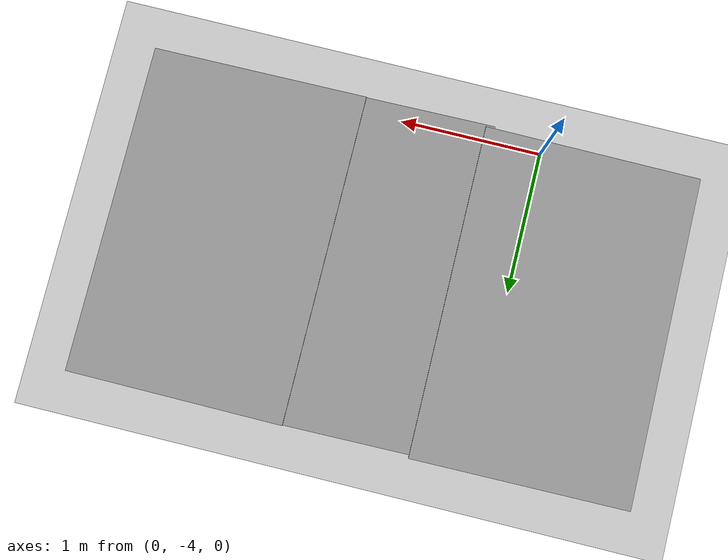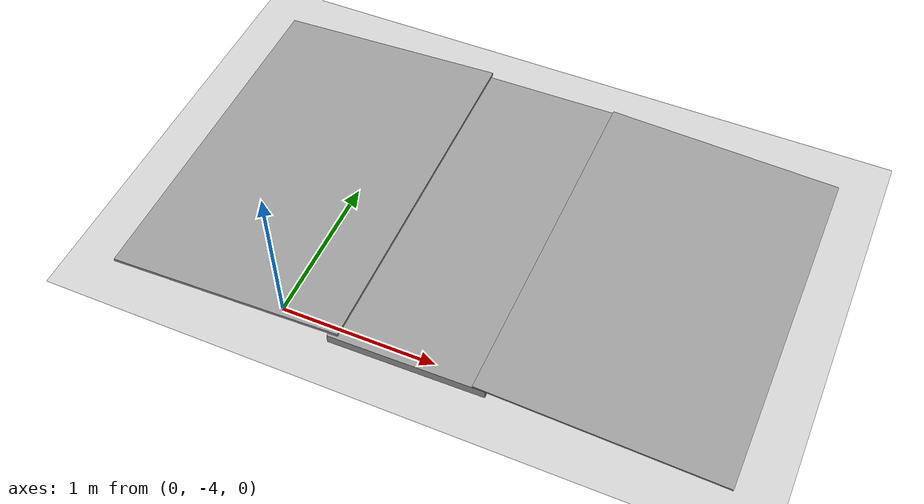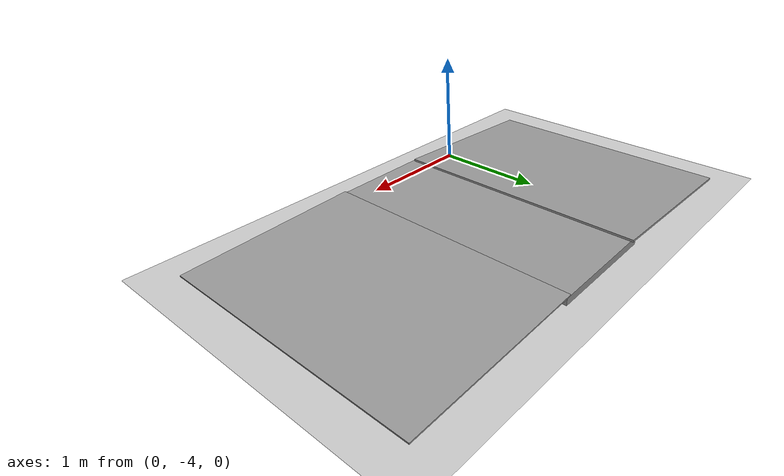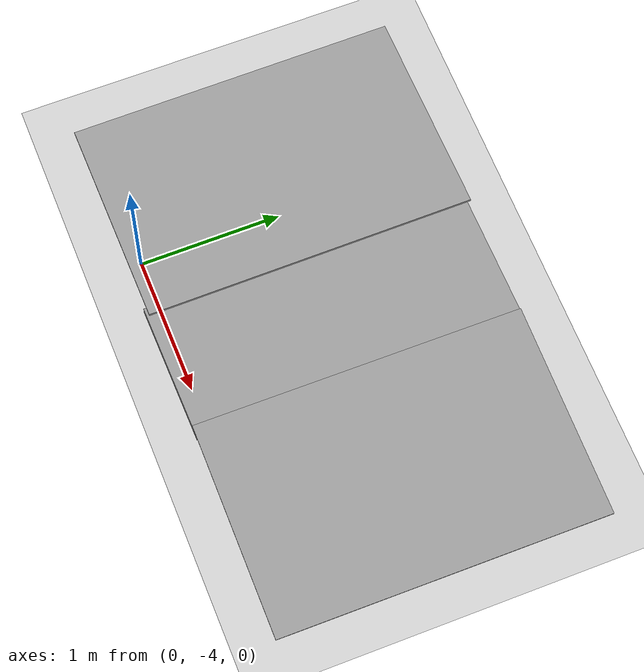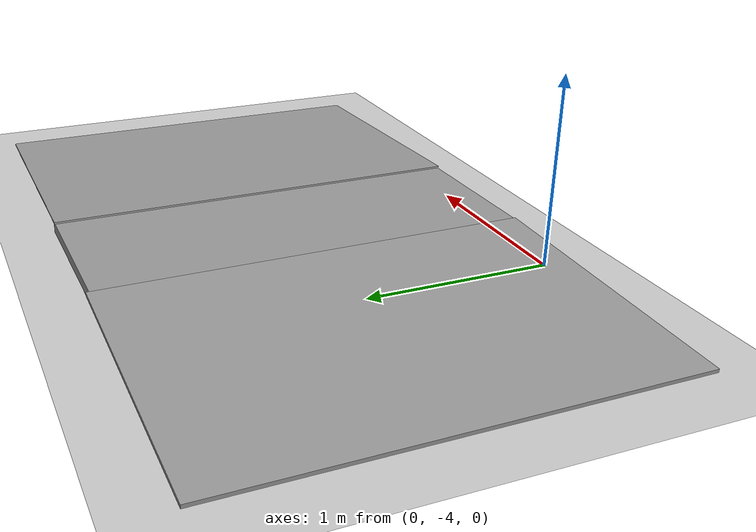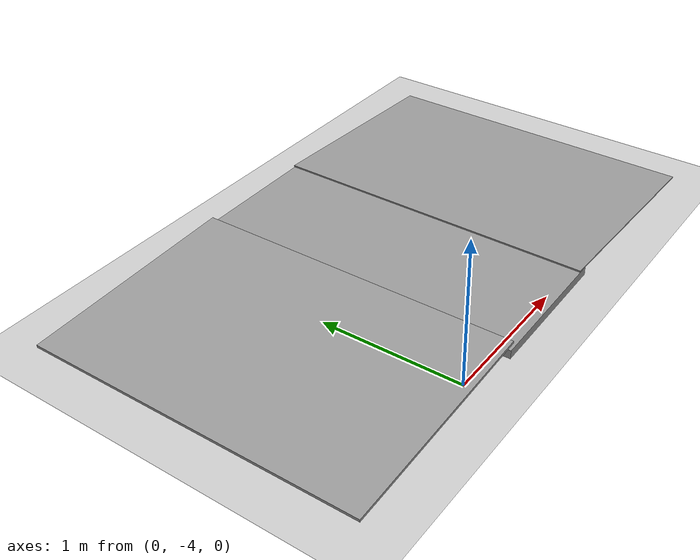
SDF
<sdf version="1.6">
 <world name="default">
  <light name="sun" type="directional">
   <pose>0 0 10 0 -0 0</pose>
   <diffuse>0.8 0.8 0.8 1</diffuse>
   <specular>0.1 0.1 0.1 1</specular>
   <attenuation>
    <range>1000</range>
    <constant>0.9</constant>
    <linear>0.01</linear>
    <quadratic>0.001</quadratic>
   </attenuation>
   <direction>-0.5 0.5 -1</direction>
  </light>
  <model name="ground_plane">
   <static>1</static>
   <link name="link">
    <collision name="collision">
     <geometry><plane><normal>0 0 1</normal><size>100 100</size></plane></geometry>
     <surface><friction><ode><mu>100</mu><mu2>50</mu2></ode></friction></surface>
    </collision>
    <visual name="visual">
     <cast_shadows>0</cast_shadows>
     <geometry><plane><normal>0 0 1</normal><size>100 100</size></plane></geometry>
     <material>
      <script><uri>file://media/materials/scripts/gazebo.material</uri><name>Gazebo/Grey</name></script>
     </material>
    </visual>
   </link>
  </model>
  <gravity>0 0 -9.8</gravity>
  <magnetic_field>6e-06 2.3e-05 -4.2e-05</magnetic_field>
  <atmosphere type="adiabatic"/>
  <physics name="default_physics" default="0" type="ode">
   <max_step_size>0.001</max_step_size>
   <real_time_factor>1</real_time_factor>
   <real_time_update_rate>1000</real_time_update_rate>
  </physics>
  <scene><ambient>0.4 0.4 0.4 1</ambient><background>0.7 0.7 0.7 1</background><shadows>1</shadows></scene>
  <spherical_coordinates>
   <surface_model>EARTH_WGS84</surface_model>
   <latitude_deg>0</latitude_deg>
   <longitude_deg>0</longitude_deg>
   <elevation>0</elevation>
   <heading_deg>0</heading_deg>
  </spherical_coordinates>
  <model name="unit_box_1_0_0_0">
   <link name="link">
    <inertial>
     <mass>5</mass>
     <inertia>
      <ixx>0.166667</ixx>
      <ixy>0</ixy>
      <ixz>0</ixz>
      <iyy>0.166667</iyy>
      <iyz>0</iyz>
      <izz>0.166667</izz>
     </inertia>
    </inertial>
    <visual name="visual">
     <geometry><box><size>1.54503 2.34178 0.010925</size></box></geometry>
     <material>
      <script><name>Gazebo/Grey</name><uri>file://media/materials/scripts/gazebo.material</uri></script>
      <ambient>0.3 0.3 0.3 1</ambient>
      <diffuse>0.7 0.7 0.7 1</diffuse>
      <specular>0.01 0.01 0.01 1</specular>
      <emissive>0 0 0 1</emissive>
      <shader type="vertex"><normal_map>__default__</normal_map></shader>
     </material>
    </visual>
    <collision name="collision">
     <geometry><box><size>1.54503 2.34178 0.010925</size></box></geometry>
     <surface>
      <friction>
       <ode><mu>1</mu><mu2>1</mu2><fdir1>0 0 0</fdir1><slip1>0</slip1><slip2>0</slip2></ode>
       <torsional>
        <coefficient>1</coefficient>
        <patch_radius>0</patch_radius>
        <surface_radius>0</surface_radius>
        <use_patch_radius>1</use_patch_radius>
        <ode><slip>0</slip></ode>
       </torsional>
      </friction>
      <bounce><restitution_coefficient>0</restitution_coefficient><threshold>1e+06</threshold></bounce>
      <contact>
       <collide_without_contact>0</collide_without_contact>
       <collide_without_contact_bitmask>1</collide_without_contact_bitmask>
       <collide_bitmask>1</collide_bitmask>
       <ode>
        <soft_cfm>0</soft_cfm>
        <soft_erp>0.2</soft_erp>
        <kp>1e+13</kp>
        <kd>1</kd>
        <max_vel>0.01</max_vel>
        <min_depth>0</min_depth>
       </ode>
       <bullet>
        <split_impulse>1</split_impulse>
        <split_impulse_penetration_threshold>-0.01</split_impulse_penetration_threshold>
        <soft_cfm>0</soft_cfm>
        <soft_erp>0.2</soft_erp>
        <kp>1e+13</kp>
        <kd>1</kd>
       </bullet>
      </contact>
     </surface>
    </collision>
   </link>
   <static>0</static>
   <pose>2.04901 -2.92475 0.037831 -3.14086 -0.04084 3.13862</pose>
  </model>
  <model name="unit_box_0_0_0">
   <link name="link">
    <inertial>
     <mass>10</mass>
     <inertia>
      <ixx>0.166667</ixx>
      <ixy>0</ixy>
      <ixz>0</ixz>
      <iyy>0.166667</iyy>
      <iyz>0</iyz>
      <izz>0.166667</izz>
     </inertia>
    </inertial>
    <visual name="visual">
     <geometry><box><size>1 2.33745 0.061306</size></box></geometry>
     <material>
      <script><name>Gazebo/Grey</name><uri>file://media/materials/scripts/gazebo.material</uri></script>
      <ambient>0.3 0.3 0.3 1</ambient>
      <diffuse>0.7 0.7 0.7 1</diffuse>
      <specular>0.01 0.01 0.01 1</specular>
      <emissive>0 0 0 1</emissive>
      <shader type="vertex"><normal_map>__default__</normal_map></shader>
     </material>
    </visual>
    <collision name="collision">
     <geometry><box><size>1 2.33745 0.061306</size></box></geometry>
     <surface>
      <friction>
       <ode><mu>1</mu><mu2>1</mu2><fdir1>0 0 0</fdir1><slip1>0</slip1><slip2>0</slip2></ode>
       <torsional>
        <coefficient>1</coefficient>
        <patch_radius>0</patch_radius>
        <surface_radius>0</surface_radius>
        <use_patch_radius>1</use_patch_radius>
        <ode><slip>0</slip></ode>
       </torsional>
      </friction>
      <bounce><restitution_coefficient>0</restitution_coefficient><threshold>1e+06</threshold></bounce>
      <contact>
       <collide_without_contact>0</collide_without_contact>
       <collide_without_contact_bitmask>1</collide_without_contact_bitmask>
       <collide_bitmask>1</collide_bitmask>
       <ode>
        <soft_cfm>0</soft_cfm>
        <soft_erp>0.2</soft_erp>
        <kp>1e+13</kp>
        <kd>1</kd>
        <max_vel>0.01</max_vel>
        <min_depth>0</min_depth>
       </ode>
       <bullet>
        <split_impulse>1</split_impulse>
        <split_impulse_penetration_threshold>-0.01</split_impulse_penetration_threshold>
        <soft_cfm>0</soft_cfm>
        <soft_erp>0.2</soft_erp>
        <kp>1e+13</kp>
        <kd>1</kd>
       </bullet>
      </contact>
     </surface>
    </collision>
   </link>
   <static>0</static>
   <pose>0.837123 -2.93018 0.03064 -1.2e-05 -2e-06 0.012917</pose>
  </model>
  <model name="unit_box_1_0_clone_0_0">
   <link name="link">
    <inertial>
     <mass>5</mass>
     <inertia>
      <ixx>0.166667</ixx>
      <ixy>0</ixy>
      <ixz>0</ixz>
      <iyy>0.166667</iyy>
      <iyz>0</iyz>
      <izz>0.166667</izz>
     </inertia>
    </inertial>
    <visual name="visual">
     <geometry><box><size>1.54503 2.34178 0.018698</size></box></geometry>
     <material>
      <script><name>Gazebo/Grey</name><uri>file://media/materials/scripts/gazebo.material</uri></script>
      <ambient>0.3 0.3 0.3 1</ambient>
      <diffuse>0.7 0.7 0.7 1</diffuse>
      <specular>0.01 0.01 0.01 1</specular>
      <emissive>0 0 0 1</emissive>
      <shader type="vertex"><normal_map>__default__</normal_map></shader>
     </material>
    </visual>
    <collision name="collision">
     <geometry><box><size>1.54503 2.34178 0.018698</size></box></geometry>
     <surface>
      <friction>
       <ode><mu>1</mu><mu2>1</mu2><fdir1>0 0 0</fdir1><slip1>0</slip1><slip2>0</slip2></ode>
       <torsional>
        <coefficient>1</coefficient>
        <patch_radius>0</patch_radius>
        <surface_radius>0</surface_radius>
        <use_patch_radius>1</use_patch_radius>
        <ode><slip>0</slip></ode>
       </torsional>
      </friction>
      <bounce><restitution_coefficient>0</restitution_coefficient><threshold>1e+06</threshold></bounce>
      <contact>
       <collide_without_contact>0</collide_without_contact>
       <collide_without_contact_bitmask>1</collide_without_contact_bitmask>
       <collide_bitmask>1</collide_bitmask>
       <ode>
        <soft_cfm>0</soft_cfm>
        <soft_erp>0.2</soft_erp>
        <kp>1e+13</kp>
        <kd>1</kd>
        <max_vel>0.01</max_vel>
        <min_depth>0</min_depth>
       </ode>
       <bullet>
        <split_impulse>1</split_impulse>
        <split_impulse_penetration_threshold>-0.01</split_impulse_penetration_threshold>
        <soft_cfm>0</soft_cfm>
        <soft_erp>0.2</soft_erp>
        <kp>1e+13</kp>
        <kd>1</kd>
       </bullet>
      </contact>
     </surface>
    </collision>
   </link>
   <static>0</static>
   <pose>-0.362931 -2.91948 0.041649 0.000288 -0.041402 0.005902</pose>
  </model>
 </world>
</sdf>
